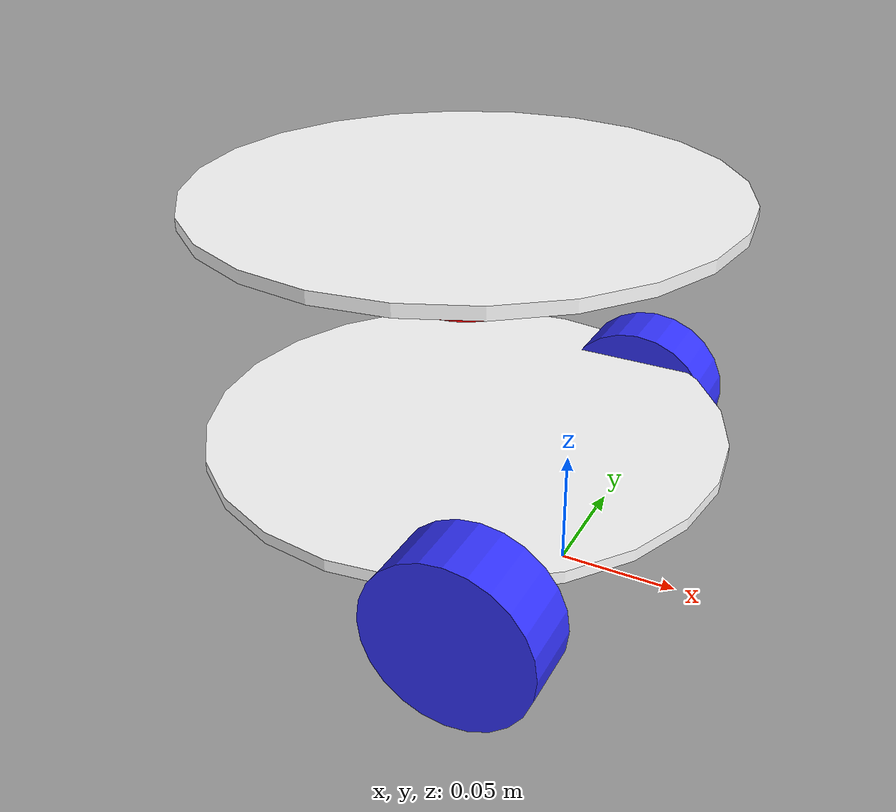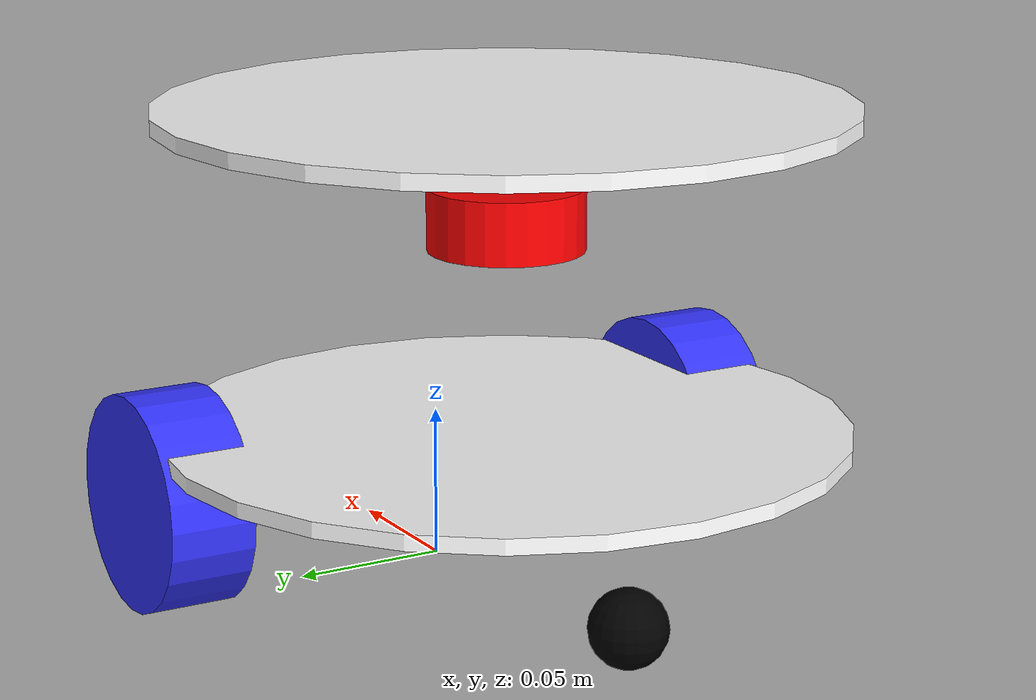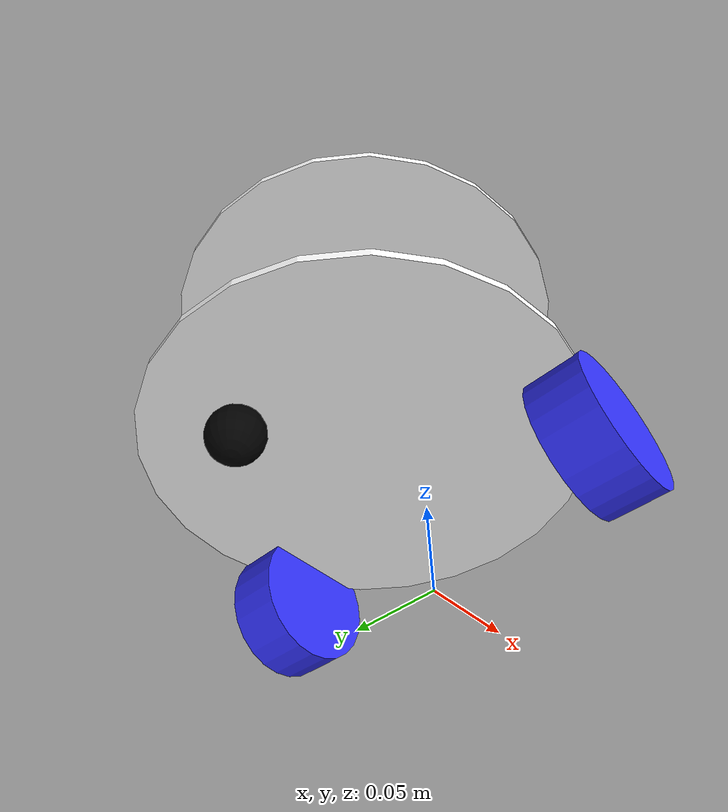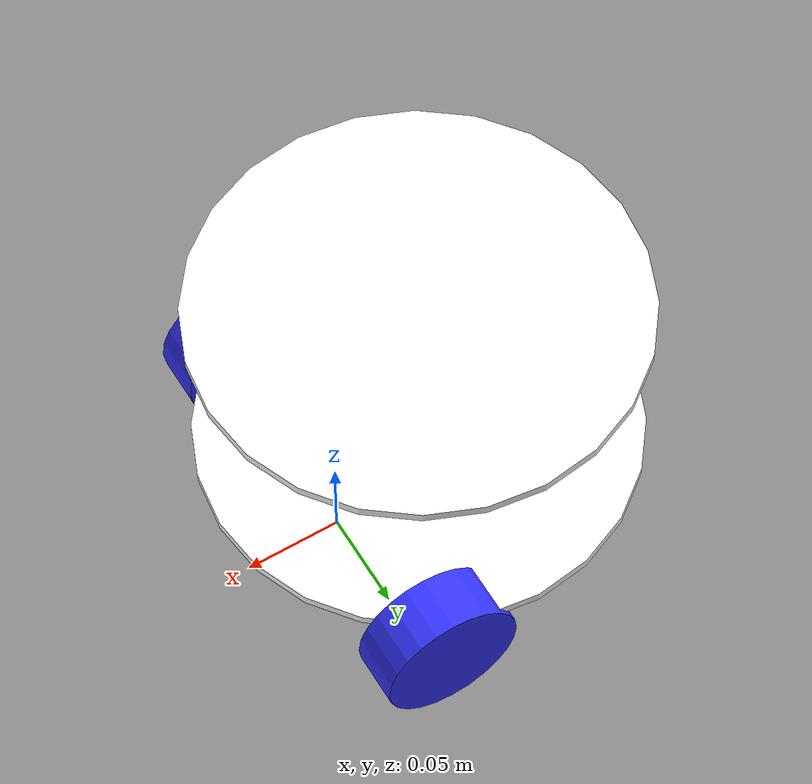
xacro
<?xml version="1.0"?>
<robot xmlns:xacro="http://www.ros.org/wiki/xacro" name="robot">

    <xacro:arg name="sim_mode" default="true" />
    <xacro:arg name="ros2_control_config" default="" />
    <!-- LiDAR extrinsics (base_link -> laser_frame). Defaults match current model. -->
    <xacro:arg name="lidar_x" default="-0.047" />
    <xacro:arg name="lidar_y" default="0" />
    <xacro:arg name="lidar_z" default="0.072" />
    <xacro:arg name="lidar_roll" default="0" />
    <xacro:arg name="lidar_pitch" default="0" />
    <xacro:arg name="lidar_yaw" default="${pi}" />

    <xacro:include filename="robot_core.xacro" />

    <xacro:if value="$(arg sim_mode)">
        <xacro:include filename="ros2_control.xacro" />
    </xacro:if>

    <xacro:unless value="$(arg sim_mode)">
        <xacro:include filename="$(arg ros2_control_config)" />
    </xacro:unless>

    <xacro:include filename="lidar.xacro" />
    <xacro:include filename="imu.xacro" />

</robot>

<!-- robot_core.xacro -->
<robot name="my_robot" xmlns:xacro="http://www.ros.org/wiki/xacro">
    <xacro:include filename="inertial_macros.xacro" />

    <!-- 颜色定义 -->
    <material name="white">
        <color rgba="1 1 1 1" />
    </material>

    <material name="orange">
        <color rgba="1 0.3 0.1 1" />
    </material>

    <material name="blue">
        <color rgba="0.2 0.2 1 1" />
    </material>

    <material name="black">
        <color rgba="0 0 0 1" />
    </material>

    <material name="red">
        <color rgba="1 0 0 1" />
    </material>

    <!-- 车身结构：双层 ⌀0.22 圆盘（2026-08 底盘重做）
         base_link = 第一层圆盘下表面所在平面，原点 = 两驱动轮轴心连线中点的投影。
         圆盘圆心不在 base_link 上，而在其后方 0.047（差速车轮轴中点 ≠ 盘心）。 -->
    <link name="base_link">
        <visual>
            <origin xyz="-0.047 0 0.0025" rpy="0 0 0" />
            <geometry>
                <cylinder radius="0.11" length="0.005" />
            </geometry>
            <material name="white" />
        </visual>
        <collision>
            <origin xyz="-0.047 0 0.0025" rpy="0 0 0" />
            <geometry>
                <cylinder radius="0.11" length="0.005" />
            </geometry>
        </collision>
        <!-- 质量为估计值（整车实测质量待补），不影响 TF/里程计，只影响仿真动力学 -->
        <xacro:inertial_cylinder mass="1.5" length="0.005" radius="0.11">
            <origin xyz="-0.047 0 0.0025" rpy="0 0 0" />
        </xacro:inertial_cylinder>
    </link>

    <!-- 第二层（顶板）：同规格 ⌀0.22 圆盘，由立柱撑开，顶面离地 0.16 -->
    <joint name="top_plate_joint" type="fixed">
        <parent link="base_link" />
        <child link="top_plate" />
        <origin xyz="-0.047 0 0.1055" rpy="0 0 0" />
    </joint>

    <link name="top_plate">
        <visual>
            <geometry>
                <cylinder radius="0.11" length="0.005" />
            </geometry>
            <material name="white" />
        </visual>
        <collision>
            <geometry>
                <cylinder radius="0.11" length="0.005" />
            </geometry>
        </collision>
        <!-- 质量为估计值，同上 -->
        <xacro:inertial_cylinder mass="0.3" length="0.005" radius="0.11">
            <origin xyz="0 0 0" rpy="0 0 0" />
        </xacro:inertial_cylinder>
    </link>

    <gazebo reference="top_plate">
        <material>Gazebo/White</material>
    </gazebo>

    <!-- BASE_FOOTPRINT -->

    <joint name="base_footprint_joint" type="fixed">
        <parent link="base_footprint" />
        <child link="base_link" />
        <!-- 第一层圆盘下表面离地 0.052（实测） -->
        <origin xyz="0 0 0.052" rpy="0 0 0" />
    </joint>

    <link name="base_footprint">
    </link>

    <!-- 左轮 -->
    <joint name="left_wheel_joint" type="continuous">
        <parent link="base_link" />
        <child link="left_wheel" />
        <!-- z 为负：轮轴心在 base_link（板下表面, 离地 0.052）下方 0.017，即离地 0.035 = 轮半径 -->
        <origin xyz="0.0 0.096 -0.017" rpy="-${pi/2} 0.0 0.0" />
        <axis xyz="0.0 0.0 1.0" />
    </joint>

    <link name="left_wheel">
        <visual>
            <geometry>
                <cylinder radius="0.035" length="0.028" />
            </geometry>
            <material name="blue" />
        </visual>
        <collision>
            <geometry>
                <cylinder radius="0.035" length="0.028" />
            </geometry>
        </collision>
        <xacro:inertial_cylinder mass="0.1" length="0.028" radius="0.035">
            <origin xyz="0 0 0" rpy="0 0 0" />
        </xacro:inertial_cylinder>
    </link>

    <gazebo reference="left_wheel">
        <mu1>1.0</mu1>
        <mu2>1.0</mu2>
        <kp>1000000.0</kp>
        <kd>100.0</kd>
        <minDepth>0.001</minDepth>
        <maxVel>0.1</maxVel>
        <fdir1>1 0 0</fdir1>
        <material>Gazebo/Blue</material>
    </gazebo>

    <!-- 右轮 -->
    <joint name="right_wheel_joint" type="continuous">
        <parent link="base_link" />
        <child link="right_wheel" />
        <!-- z 为负，同左轮 -->
        <origin xyz="0.0 -0.096 -0.017" rpy="${pi/2} 0.0 0.0" />
        <axis xyz="0.0 0.0 -1.0" />
    </joint>

    <link name="right_wheel">
        <visual>
            <geometry>
                <cylinder radius="0.035" length="0.028" />
            </geometry>
            <material name="blue" />
        </visual>
        <collision>
            <geometry>
                <cylinder radius="0.035" length="0.028" />
            </geometry>
        </collision>
        <xacro:inertial_cylinder mass="0.1" length="0.028" radius="0.035">
            <origin xyz="0 0 0" rpy="0 0 0" />
        </xacro:inertial_cylinder>
    </link>

    <gazebo reference="right_wheel">
        <mu1>1.0</mu1>
        <mu2>1.0</mu2>
        <kp>1000000.0</kp>
        <kd>100.0</kd>
        <minDepth>0.001</minDepth>
        <maxVel>0.1</maxVel>
        <fdir1>1 0 0</fdir1>
        <material>Gazebo/Blue</material>
    </gazebo>

    <!-- 后辅助轮 -->
    <joint name="caster_back_joint" type="fixed">
        <parent link="base_link" />
        <child link="caster_back_wheel" />
        <!-- WHEELTEC 万向轮 Ø25，球心在轮轴中点后方 0.12；z 为负，球心离地 0.0125 = 球半径 -->
        <origin xyz="-0.12 0 -0.0395" rpy="0 0 0" />
    </joint>

    <link name="caster_back_wheel">
        <visual>
            <geometry>
                <sphere radius="0.0125" />
            </geometry>
            <material name="black" />
        </visual>
        <collision>
            <geometry>
                <sphere radius="0.0125" />
            </geometry>
        </collision>
        <xacro:inertial_sphere mass="0.05" radius="0.0125">
            <origin xyz="0 0 0" rpy="0 0 0" />
        </xacro:inertial_sphere>
    </link>

    <gazebo reference="caster_back_wheel">
        <mu1>0.0001</mu1>
        <mu2>0.0001</mu2>
        <kp>1000000.0</kp>
        <kd>100.0</kd>
        <minDepth>0.001</minDepth>
        <maxVel>1.0</maxVel>
        <material>Gazebo/Black</material>
    </gazebo>

    <gazebo>
        <plugin filename="gz-sim-pose-publisher-system"
                name="gz::sim::systems::PosePublisher">
            <publish_model_pose>true</publish_model_pose>
            <publish_link_pose>false</publish_link_pose>
            <publish_collision_pose>false</publish_collision_pose>
            <publish_visual_pose>false</publish_visual_pose>
            <publish_nested_model_pose>false</publish_nested_model_pose>
            <use_pose_vector_msg>false</use_pose_vector_msg>
            <update_frequency>50</update_frequency>
        </plugin>
    </gazebo>

</robot>

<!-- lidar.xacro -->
<robot xmlns:xacro="http://www.ros.org/wiki/xacro">

    <!-- 激光雷达 link：安装在底盘上方的红色圆柱 -->
    <joint name="laser_joint" type="fixed">
        <parent link="base_link" />
        <child link="laser_frame" />
        <origin xyz="$(arg lidar_x) $(arg lidar_y) $(arg lidar_z)"
            rpy="$(arg lidar_roll) $(arg lidar_pitch) $(arg lidar_yaw)" />
    </joint>

    <link name="laser_frame">
        <visual>
            <geometry>
                <cylinder radius="0.025" length="0.02" />
            </geometry>
            <material name="red" />
        </visual>
        <collision>
            <geometry>
                <cylinder radius="0.025" length="0.02" />
            </geometry>
        </collision>
        <xacro:inertial_cylinder mass="0.01" length="0.025" radius="0.02">
            <origin xyz="0 0 0" rpy="0 0 0" />
        </xacro:inertial_cylinder>
    </link>

    <!-- Gazebo 仿真传感器 -->
    <gazebo reference="laser_frame">
        <material>Gazebo/Black</material>
        <sensor name="laser" type="gpu_lidar">
            <pose>0 0 0 0 0 0</pose>
            <visualize>false</visualize>
            <update_rate>10</update_rate>
            <topic>scan</topic>
            <gz_frame_id>laser_frame</gz_frame_id>
            <lidar>
                <scan>
                    <horizontal>
                        <samples>720</samples>
                        <min_angle>-3.14159</min_angle>
                        <max_angle>3.14159</max_angle>
                    </horizontal>
                </scan>
                <!-- max 必须和 laser_filters_sim.yaml 的 upper_threshold 一起改，
                     只改滤波器无效（源头没有的数据放行不出来）。 -->
                <range>
                    <min>0.1</min>
                    <max>8.0</max>
                </range>
                <noise>
                    <type>gaussian</type>
                    <mean>0.0</mean>
                    <stddev>0.005</stddev>
                </noise>
            </lidar>
        </sensor>
    </gazebo>
</robot>

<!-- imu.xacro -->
<robot xmlns:xacro="http://www.ros.org/wiki/xacro">

    <!-- IMU -->
    <joint name="imu_joint" type="fixed">
        <parent link="base_link"/>
        <child link="imu_link"/>
        <!-- 实测安装位：x=0，y 右偏 0.04，离地 0.084（base_link 上方 0.032）；朝向未变 -->
        <origin xyz="0 -0.04 0.032" rpy="0 0 0"/>
    </joint>

    <link name="imu_link">
        <inertial>
            <mass value="0.001"/>
            <inertia ixx="1e-6" ixy="0" ixz="0"
                    iyy="1e-6" iyz="0" izz="1e-6"/>
        </inertial>
    </link>

    <gazebo reference="imu_link">
        <sensor name="imu_sensor" type="imu">
            <always_on>true</always_on>
            <update_rate>100</update_rate>
            <topic>imu</topic>
            <gz_frame_id>imu_link</gz_frame_id>
            <imu>
                <angular_velocity>
                    <x><noise type="gaussian"><mean>0.0</mean><stddev>2e-4</stddev></noise></x>
                    <y><noise type="gaussian"><mean>0.0</mean><stddev>2e-4</stddev></noise></y>
                    <z><noise type="gaussian"><mean>0.0</mean><stddev>2e-4</stddev></noise></z>
                </angular_velocity>
                <linear_acceleration>
                    <x><noise type="gaussian"><mean>0.0</mean><stddev>1.7e-2</stddev></noise></x>
                    <y><noise type="gaussian"><mean>0.0</mean><stddev>1.7e-2</stddev></noise></y>
                    <z><noise type="gaussian"><mean>0.0</mean><stddev>1.7e-2</stddev></noise></z>
                </linear_acceleration>
            </imu>
        </sensor>
    </gazebo>

</robot>
